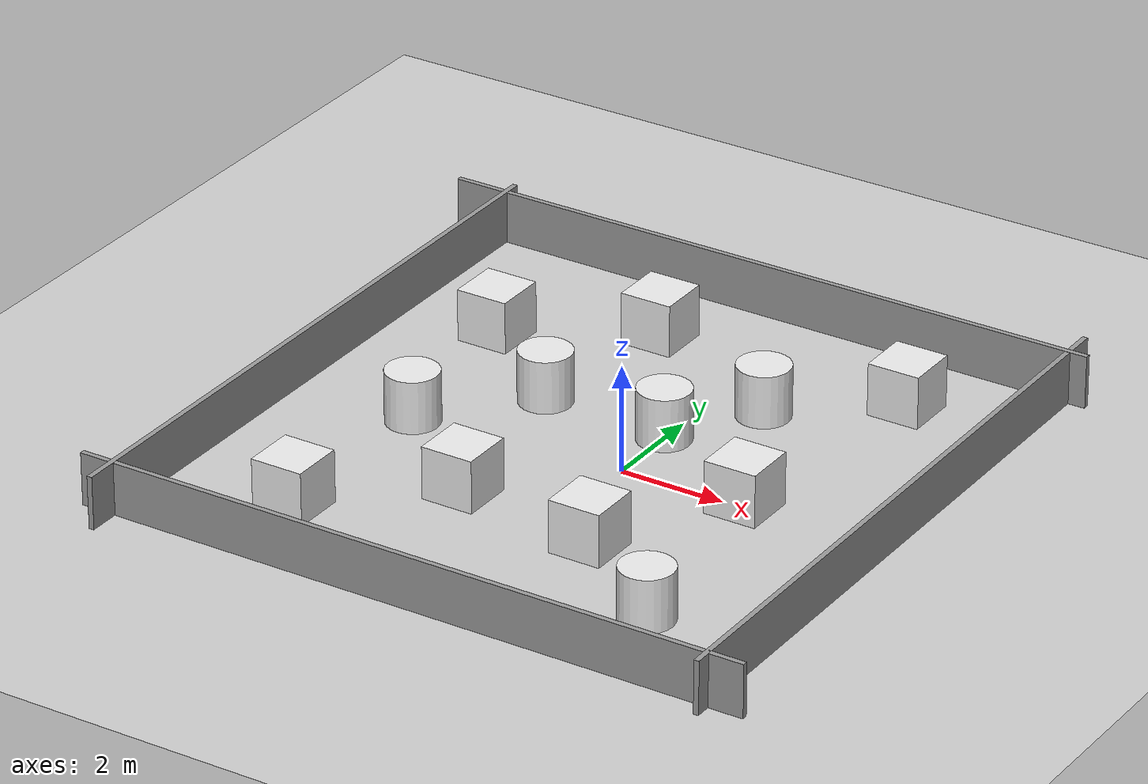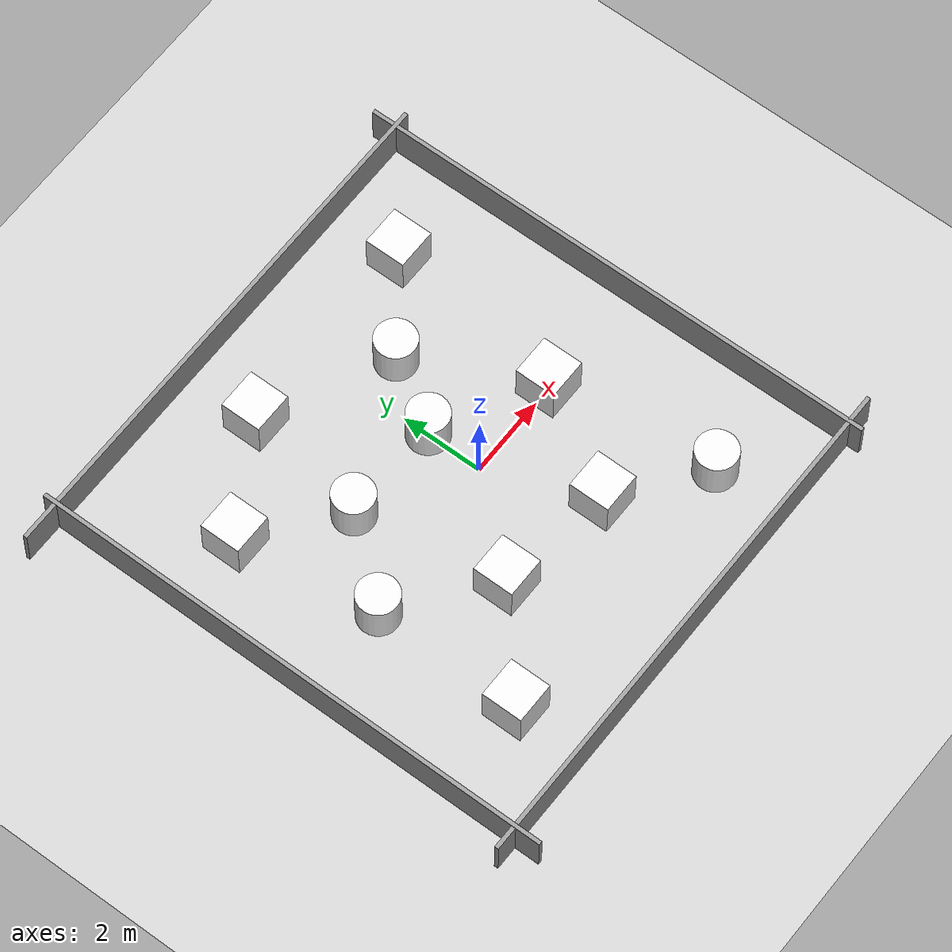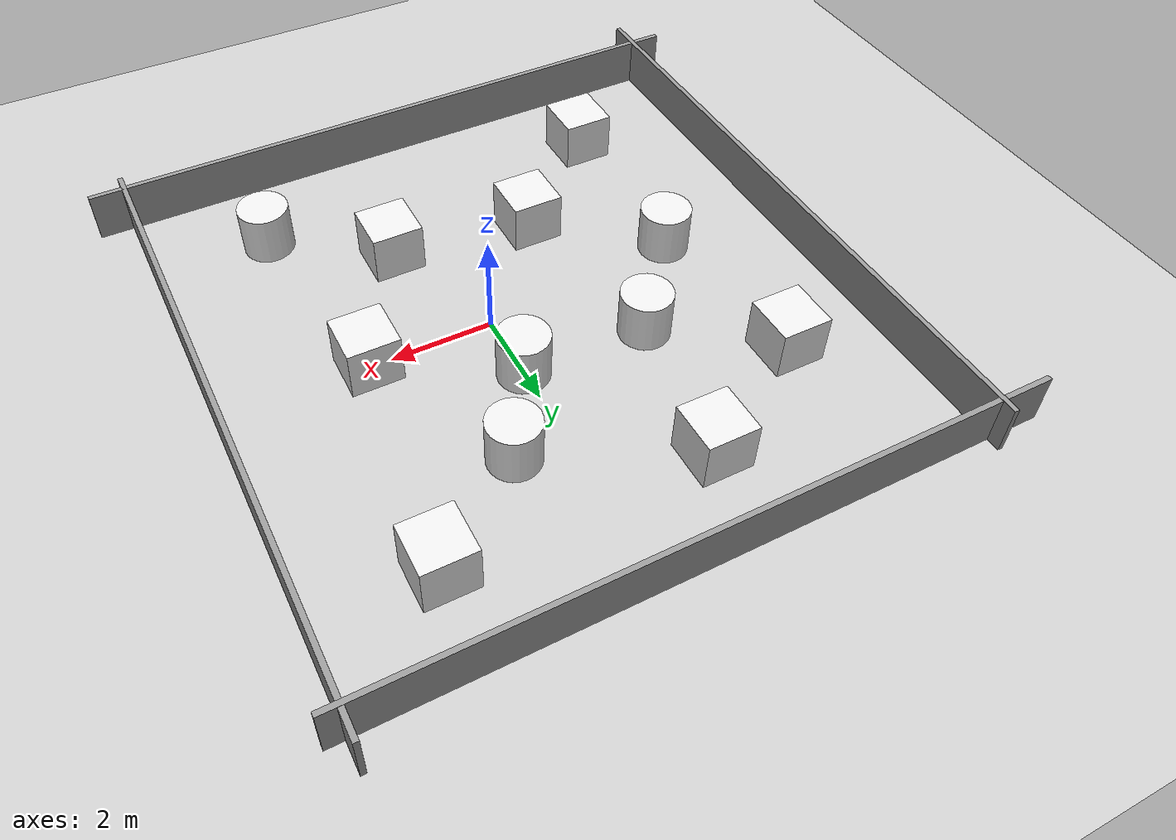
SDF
<sdf version="1.4">
 <world name="default">
  <light name="sun" type="directional">
   <pose>0 0 10 0 -0 0</pose>
   <diffuse>0.8 0.8 0.8 1</diffuse>
   <specular>0.2 0.2 0.2 1</specular>
   <attenuation>
    <range>1000</range>
    <constant>0.9</constant>
    <linear>0.01</linear>
    <quadratic>0.001</quadratic>
   </attenuation>
   <direction>-0.5 0.1 -0.9</direction>
  </light>
  <model name="ground_plane">
   <static>1</static>
   <link name="link">
    <collision name="collision">
     <geometry><plane><normal>0 0 1</normal><size>100 100</size></plane></geometry>
     <surface><friction><ode><mu>100</mu><mu2>50</mu2></ode></friction></surface>
    </collision>
    <visual name="visual">
     <cast_shadows>0</cast_shadows>
     <geometry><plane><normal>0 0 1</normal><size>100 100</size></plane></geometry>
     <material>
      <script><uri>file://media/materials/scripts/gazebo.material</uri><name>Gazebo/Grey</name></script>
     </material>
    </visual>
    <velocity_decay><linear>0</linear><angular>0</angular></velocity_decay>
   </link>
  </model>
  <physics type="ode">
   <max_step_size>0.001</max_step_size>
   <real_time_factor>1</real_time_factor>
   <real_time_update_rate>1000</real_time_update_rate>
   <gravity>0 0 -9.8</gravity>
  </physics>
  <scene><ambient>0.4 0.4 0.4 1</ambient><background>0.7 0.7 0.7 1</background><shadows>1</shadows></scene>
  <spherical_coordinates>
   <surface_model>EARTH_WGS84</surface_model>
   <latitude_deg>0</latitude_deg>
   <longitude_deg>0</longitude_deg>
   <elevation>0</elevation>
   <heading_deg>0</heading_deg>
  </spherical_coordinates>
  <model name="unit_box_1">
   <pose>-6.41669 0.046612 0.498774 0.000208 0.000369 -5.4e-05</pose>
   <link name="link">
    <inertial>
     <mass>1</mass>
     <inertia><ixx>1</ixx><ixy>0</ixy><ixz>0</ixz><iyy>1</iyy><iyz>0</iyz><izz>1</izz></inertia>
    </inertial>
    <collision name="collision"><geometry><box><size>0.1 13 1</size></box></geometry></collision>
    <visual name="visual">
     <geometry><box><size>0.1 13 1</size></box></geometry>
     <material>
      <script><uri>file://media/materials/scripts/gazebo.material</uri><name>Gazebo/Grey</name></script>
     </material>
    </visual>
    <velocity_decay><linear>0</linear><angular>0</angular></velocity_decay>
   </link>
   <static>1</static>
  </model>
  <model name="unit_box_2">
   <pose>-0.541682 -5.80662 0.498113 -4.5e-05 -0.000327 -0.000172</pose>
   <link name="link">
    <inertial>
     <mass>1</mass>
     <inertia><ixx>1</ixx><ixy>0</ixy><ixz>0</ixz><iyy>1</iyy><iyz>0</iyz><izz>1</izz></inertia>
    </inertial>
    <collision name="collision"><geometry><box><size>13 0.1 1</size></box></geometry></collision>
    <visual name="visual">
     <geometry><box><size>13 0.1 1</size></box></geometry>
     <material>
      <script><uri>file://media/materials/scripts/gazebo.material</uri><name>Gazebo/Grey</name></script>
     </material>
    </visual>
    <velocity_decay><linear>0</linear><angular>0</angular></velocity_decay>
   </link>
   <static>1</static>
  </model>
  <model name="unit_box_3">
   <pose>-0.935873 6.24138 0.498594 0.000368 -0.000248 0.000688</pose>
   <link name="link">
    <inertial>
     <mass>1</mass>
     <inertia><ixx>1</ixx><ixy>0</ixy><ixz>0</ixz><iyy>1</iyy><iyz>0</iyz><izz>1</izz></inertia>
    </inertial>
    <collision name="collision"><geometry><box><size>13 0.1 1</size></box></geometry></collision>
    <visual name="visual">
     <geometry><box><size>13 0.1 1</size></box></geometry>
     <material>
      <script><uri>file://media/materials/scripts/gazebo.material</uri><name>Gazebo/Grey</name></script>
     </material>
    </visual>
    <velocity_decay><linear>0</linear><angular>0</angular></velocity_decay>
   </link>
   <static>1</static>
  </model>
  <model name="unit_box_4">
   <pose>5.2218 0.351027 0.497222 -0.000455 8e-06 0.005972</pose>
   <link name="link">
    <inertial>
     <mass>1</mass>
     <inertia><ixx>1</ixx><ixy>0</ixy><ixz>0</ixz><iyy>1</iyy><iyz>0</iyz><izz>1</izz></inertia>
    </inertial>
    <collision name="collision"><geometry><box><size>0.1 13 1</size></box></geometry></collision>
    <visual name="visual">
     <geometry><box><size>0.1 13 1</size></box></geometry>
     <material>
      <script><uri>file://media/materials/scripts/gazebo.material</uri><name>Gazebo/Grey</name></script>
     </material>
    </visual>
    <velocity_decay><linear>0</linear><angular>0</angular></velocity_decay>
   </link>
   <static>1</static>
  </model>
  <model name="unit_box_5">
   <pose>-1.83137 -2.124 0.5 0 -0 0</pose>
   <link name="link">
    <inertial>
     <mass>1</mass>
     <inertia><ixx>1</ixx><ixy>0</ixy><ixz>0</ixz><iyy>1</iyy><iyz>0</iyz><izz>1</izz></inertia>
    </inertial>
    <collision name="collision"><geometry><box><size>1 1 1</size></box></geometry></collision>
    <visual name="visual">
     <geometry><box><size>1 1 1</size></box></geometry>
     <material>
      <script><uri>file://media/materials/scripts/gazebo.material</uri><name>Gazebo/White</name></script>
     </material>
    </visual>
    <velocity_decay><linear>0</linear><angular>0</angular></velocity_decay>
   </link>
   <static>1</static>
  </model>
  <model name="unit_cylinder_2">
   <pose>-2.46489 1.43337 0.499996 1e-06 -0 0</pose>
   <link name="link">
    <inertial>
     <mass>1</mass>
     <inertia><ixx>1</ixx><ixy>0</ixy><ixz>0</ixz><iyy>1</iyy><iyz>0</iyz><izz>1</izz></inertia>
    </inertial>
    <collision name="collision">
     <geometry><cylinder><radius>0.5</radius><length>1</length></cylinder></geometry>
    </collision>
    <visual name="visual">
     <geometry><cylinder><radius>0.5</radius><length>1</length></cylinder></geometry>
     <material>
      <script><uri>file://media/materials/scripts/gazebo.material</uri><name>Gazebo/White</name></script>
     </material>
    </visual>
    <velocity_decay><linear>0</linear><angular>0</angular></velocity_decay>
   </link>
   <static>1</static>
  </model>
  <model name="unit_box_6">
   <pose>0.958314 -2.52497 0.5 0 -0 0</pose>
   <link name="link">
    <inertial>
     <mass>1</mass>
     <inertia><ixx>1</ixx><ixy>0</ixy><ixz>0</ixz><iyy>1</iyy><iyz>0</iyz><izz>1</izz></inertia>
    </inertial>
    <collision name="collision"><geometry><box><size>1 1 1</size></box></geometry></collision>
    <visual name="visual">
     <geometry><box><size>1 1 1</size></box></geometry>
     <material>
      <script><uri>file://media/materials/scripts/gazebo.material</uri><name>Gazebo/White</name></script>
     </material>
    </visual>
    <velocity_decay><linear>0</linear><angular>0</angular></velocity_decay>
   </link>
   <static>1</static>
  </model>
  <model name="unit_cylinder_3">
   <pose>1 3 0.499998 1e-06 -0 0</pose>
   <link name="link">
    <inertial>
     <mass>1</mass>
     <inertia><ixx>1</ixx><ixy>0</ixy><ixz>0</ixz><iyy>1</iyy><iyz>0</iyz><izz>1</izz></inertia>
    </inertial>
    <collision name="collision">
     <geometry><cylinder><radius>0.5</radius><length>1</length></cylinder></geometry>
    </collision>
    <visual name="visual">
     <geometry><cylinder><radius>0.5</radius><length>1</length></cylinder></geometry>
     <material>
      <script><uri>file://media/materials/scripts/gazebo.material</uri><name>Gazebo/White</name></script>
     </material>
    </visual>
    <velocity_decay><linear>0</linear><angular>0</angular></velocity_decay>
   </link>
   <static>1</static>
  </model>
  <model name="unit_box_1_0">
   <pose>2.43389 0 0.5 0 -0 0</pose>
   <link name="link">
    <inertial>
     <mass>1</mass>
     <inertia><ixx>1</ixx><ixy>0</ixy><ixz>0</ixz><iyy>1</iyy><iyz>0</iyz><izz>1</izz></inertia>
    </inertial>
    <collision name="collision"><geometry><box><size>1 1 1</size></box></geometry></collision>
    <visual name="visual">
     <geometry><box><size>1 1 1</size></box></geometry>
     <material>
      <script><uri>file://media/materials/scripts/gazebo.material</uri><name>Gazebo/White</name></script>
     </material>
    </visual>
    <velocity_decay><linear>0</linear><angular>0</angular></velocity_decay>
   </link>
   <static>0</static>
  </model>
  <model name="unit_cylinder_1">
   <pose>-4 -0.408424 0.499992 -1e-06 -0 0</pose>
   <link name="link">
    <inertial>
     <mass>1</mass>
     <inertia><ixx>1</ixx><ixy>0</ixy><ixz>0</ixz><iyy>1</iyy><iyz>0</iyz><izz>1</izz></inertia>
    </inertial>
    <collision name="collision">
     <geometry><cylinder><radius>0.5</radius><length>1</length></cylinder></geometry>
    </collision>
    <visual name="visual">
     <geometry><cylinder><radius>0.5</radius><length>1</length></cylinder></geometry>
     <material>
      <script><uri>file://media/materials/scripts/gazebo.material</uri><name>Gazebo/White</name></script>
     </material>
    </visual>
    <velocity_decay><linear>0</linear><angular>0</angular></velocity_decay>
   </link>
   <static>0</static>
  </model>
  <model name="unit_box_2_0">
   <pose>-2 4.44253 0.5 0 -0 0</pose>
   <link name="link">
    <inertial>
     <mass>1</mass>
     <inertia><ixx>1</ixx><ixy>0</ixy><ixz>0</ixz><iyy>1</iyy><iyz>0</iyz><izz>1</izz></inertia>
    </inertial>
    <collision name="collision"><geometry><box><size>1 1 1</size></box></geometry></collision>
    <visual name="visual">
     <geometry><box><size>1 1 1</size></box></geometry>
     <material>
      <script><uri>file://media/materials/scripts/gazebo.material</uri><name>Gazebo/White</name></script>
     </material>
    </visual>
    <velocity_decay><linear>0</linear><angular>0</angular></velocity_decay>
   </link>
   <static>0</static>
  </model>
  <model name="unit_box_3_0">
   <pose>-4 -4 0.5 0 -0 0</pose>
   <link name="link">
    <inertial>
     <mass>1</mass>
     <inertia><ixx>1</ixx><ixy>0</ixy><ixz>0</ixz><iyy>1</iyy><iyz>0</iyz><izz>1</izz></inertia>
    </inertial>
    <collision name="collision"><geometry><box><size>1 1 1</size></box></geometry></collision>
    <visual name="visual">
     <geometry><box><size>1 1 1</size></box></geometry>
     <material>
      <script><uri>file://media/materials/scripts/gazebo.material</uri><name>Gazebo/White</name></script>
     </material>
    </visual>
    <velocity_decay><linear>0</linear><angular>0</angular></velocity_decay>
   </link>
   <static>0</static>
  </model>
  <model name="unit_box_4_0">
   <pose>-4.50155 3 0.5 0 -0 0</pose>
   <link name="link">
    <inertial>
     <mass>1</mass>
     <inertia><ixx>1</ixx><ixy>0</ixy><ixz>0</ixz><iyy>1</iyy><iyz>0</iyz><izz>1</izz></inertia>
    </inertial>
    <collision name="collision"><geometry><box><size>1 1 1</size></box></geometry></collision>
    <visual name="visual">
     <geometry><box><size>1 1 1</size></box></geometry>
     <material>
      <script><uri>file://media/materials/scripts/gazebo.material</uri><name>Gazebo/White</name></script>
     </material>
    </visual>
    <velocity_decay><linear>0</linear><angular>0</angular></velocity_decay>
   </link>
   <static>0</static>
  </model>
  <model name="unit_cylinder_4">
   <pose>3 -4 0.499992 -1e-06 -0 0</pose>
   <link name="link">
    <inertial>
     <mass>1</mass>
     <inertia><ixx>1</ixx><ixy>0</ixy><ixz>0</ixz><iyy>1</iyy><iyz>0</iyz><izz>1</izz></inertia>
    </inertial>
    <collision name="collision">
     <geometry><cylinder><radius>0.5</radius><length>1</length></cylinder></geometry>
    </collision>
    <visual name="visual">
     <geometry><cylinder><radius>0.5</radius><length>1</length></cylinder></geometry>
     <material>
      <script><uri>file://media/materials/scripts/gazebo.material</uri><name>Gazebo/White</name></script>
     </material>
    </visual>
    <velocity_decay><linear>0</linear><angular>0</angular></velocity_decay>
   </link>
   <static>0</static>
  </model>
  <model name="unit_box_5_0">
   <pose>3 4.47392 0.5 0 -0 0</pose>
   <link name="link">
    <inertial>
     <mass>1</mass>
     <inertia><ixx>1</ixx><ixy>0</ixy><ixz>0</ixz><iyy>1</iyy><iyz>0</iyz><izz>1</izz></inertia>
    </inertial>
    <collision name="collision"><geometry><box><size>1 1 1</size></box></geometry></collision>
    <visual name="visual">
     <geometry><box><size>1 1 1</size></box></geometry>
     <material>
      <script><uri>file://media/materials/scripts/gazebo.material</uri><name>Gazebo/White</name></script>
     </material>
    </visual>
    <velocity_decay><linear>0</linear><angular>0</angular></velocity_decay>
   </link>
   <static>0</static>
  </model>
  <model name="unit_cylinder_5">
   <pose>-0 1.36063 0.499998 0 -0 0</pose>
   <link name="link">
    <inertial>
     <mass>1</mass>
     <inertia><ixx>1</ixx><ixy>0</ixy><ixz>0</ixz><iyy>1</iyy><iyz>0</iyz><izz>1</izz></inertia>
    </inertial>
    <collision name="collision">
     <geometry><cylinder><radius>0.5</radius><length>1</length></cylinder></geometry>
    </collision>
    <visual name="visual">
     <geometry><cylinder><radius>0.5</radius><length>1</length></cylinder></geometry>
     <material>
      <script><uri>file://media/materials/scripts/gazebo.material</uri><name>Gazebo/White</name></script>
     </material>
    </visual>
    <velocity_decay><linear>0</linear><angular>0</angular></velocity_decay>
   </link>
   <static>0</static>
  </model>
 </world>
</sdf>
